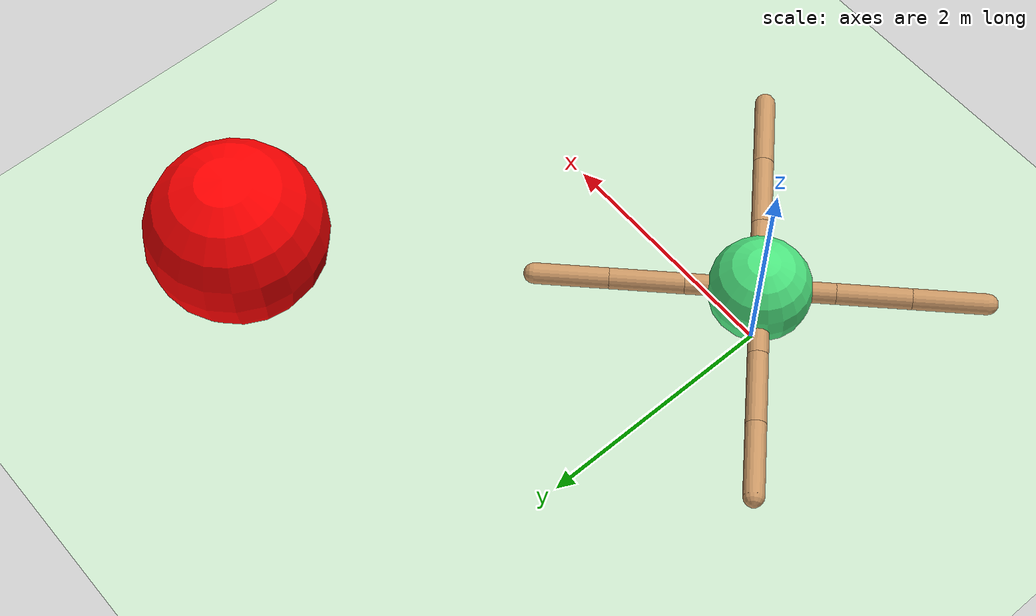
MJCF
<mujoco model="ant">
  <compiler inertiafromgeom="true" angle="degree" coordinate="local" />
  <size njmax="1000" nconmax="1500"></size>
  <option timestep="0.005" integrator="RK4" />
  <custom>
    <numeric name="init_qpos" data="0.0 0.0 0.55 1.0 0.0 0.0 0.0 0.0 1.0 0.0 -1.0 0.0 -1.0 0.0 1.0" />
  </custom>
  <default>
    <joint limited="true" armature="1" damping="1" />
    <geom condim="3" conaffinity="0" margin="0.01" friction="1 0.5 0.5" solref=".02 1" solimp=".8 .8 .01" rgba="0.8 0.6 0.4 1" density="5.0" />
  </default>
  <asset>
    <texture type="skybox" builtin="gradient" width="100" height="100" rgb1="1 1 1" rgb2="0 0 0" />
    <texture name="texgeom" type="cube" builtin="flat" mark="cross" width="127" height="1278" rgb1="0.8 0.6 0.4" rgb2="0.8 0.6 0.4" markrgb="1 1 1" random="0.01" />
    <texture name="texplane" type="2d" builtin="checker" rgb1="0.2 0.3 0.4" rgb2="0.1 0.2 0.3" width="100" height="100" />
    <material name='MatPlane' texture="texplane" shininess="1" texrepeat="60 60" specular="1"  reflectance="0.0" />
    <material name='geom' texture="texgeom" texuniform="true" />
  </asset>
  <worldbody>
    <light directional="true" cutoff="100" exponent="1" diffuse="1 1 1" specular=".1 .1 .1" pos="0 0 1.3" dir="-0 0 -1.3" />
    <geom name='floor' pos='0 0 0' size='40 40 40' type='plane' conaffinity='1' rgba='0.8 0.9 0.8 1' condim='3' material='MatPlane' />
    <body name="torso" pos="0 0 0.75">
      <geom name="torso_geom" type="sphere" size="0.4" pos="0 0 0" rgba="0.3 0.9 0.5 1"/>
      <joint name="root" type="free" limited="false" pos="0 0 0" axis="0 0 1" margin="0.01" armature="0" damping="0" />
      <body name="front_left_leg" pos="0 0 0">
        <geom name="aux_1_geom" type="capsule" size="0.08" fromto="0.0 0.0 0.0 0.4 0.4 0.0" />
        <body name="aux_1" pos="0.4 0.4 0">
          <joint name="hip_1" type="hinge" pos="0.0 0.0 0.0" axis="0 0 1" range="-30 30" />
          <geom name="left_leg_geom" type="capsule" size="0.08" fromto="0.0 0.0 0.0 0.4 0.4 0.0" />
          <body pos="0.4 0.4 0">
            <joint name="ankle_1" type="hinge" pos="0.0 0.0 0.0" axis="-1 1 0" range="30 70" />
            <geom name="left_ankle_geom" type="capsule" size="0.08" fromto="0.0 0.0 0.0 0.4 0.4 0.0" />
          </body>
        </body>
      </body>
      <body name="front_right_leg" pos="0 0 0">
        <geom name="aux_2_geom" type="capsule" size="0.08" fromto="0.0 0.0 0.0 -0.4 0.4 0.0" />
        <body name="aux_2" pos="-0.4 0.4 0">
          <joint name="hip_2" type="hinge" pos="0.0 0.0 0.0" axis="0 0 1" range="-30 30" />
          <geom name="right_leg_geom" type="capsule" size="0.08" fromto="0.0 0.0 0.0 -0.4 0.4 0.0" />
          <body pos="-0.4 0.4 0">
            <joint name="ankle_2" type="hinge" pos="0.0 0.0 0.0" axis="1 1 0" range="-70 -30" />
            <geom name="right_ankle_geom" type="capsule" size="0.08" fromto="0.0 0.0 0.0 -0.4 0.4 0.0" />
          </body>
        </body>
      </body>
      <body name="back_leg" pos="0 0 0">
        <geom name="aux_3_geom" type="capsule" size="0.08" fromto="0.0 0.0 0.0 -0.4 -0.4 0.0" />
        <body name="aux_3" pos="-0.4 -0.4 0">
          <joint name="hip_3" type="hinge" pos="0.0 0.0 0.0" axis="0 0 1" range="-30 30" />
          <geom name="back_leg_geom" type="capsule" size="0.08" fromto="0.0 0.0 0.0 -0.4 -0.4 0.0" />
          <body pos="-0.4 -0.4 0">
            <joint name="ankle_3" type="hinge" pos="0.0 0.0 0.0" axis="-1 1 0" range="-70 -30" />
            <geom name="third_ankle_geom" type="capsule" size="0.08" fromto="0.0 0.0 0.0 -0.4 -0.4 0.0" />
          </body>
        </body>
      </body>
      <body name="right_back_leg" pos="0 0 0">
        <geom name="aux_4_geom" type="capsule" size="0.08" fromto="0.0 0.0 0.0 0.4 -0.4 0.0" />
        <body name="aux_4" pos="0.4 -0.4 0">
          <joint name="hip_4" type="hinge" pos="0.0 0.0 0.0" axis="0 0 1" range="-30 30" />
          <geom name="rightback_leg_geom" type="capsule" size="0.08" fromto="0.0 0.0 0.0 0.4 -0.4 0.0" />
          <body pos="0.4 -0.4 0">
            <joint name="ankle_4" type="hinge" pos="0.0 0.0 0.0" axis="1 1 0" range="30 70" />
            <geom name="fourth_ankle_geom" type="capsule" size="0.08" fromto="0.0 0.0 0.0 0.4 -0.4 0.0" />
          </body>
        </body>
      </body>
    </body>
    <body name="skybox" pos="0.8 0.75 0">
      <site name="target0" pos="2 2 1" size="0.7" rgba="1 0 0 1" type="sphere"></site>
      <site name = "subgoal_0" type="sphere" pos="0 0 0.5" size="0.7" rgba="1 0 1 0" /><!-- Subgoal 1: Purple -->
      <site name = "subgoal_1" type="sphere" pos="0 0 0.5" size="0.7" rgba="0 1 0 0" /><!-- Subgoal 2: Green -->
      <site name = "subgoal_2" type="sphere" pos="0 0 0.5" size="0.7" rgba="0.5 0.5 0.5 0" /><!-- Subgoal 3: Gray -->
      <site name = "subgoal_3" type="sphere" pos="0 0 0.5" size="0.7" rgba="1 1 1 0" /><!-- Subgoal 4: White -->
      <site name = "subgoal_4" type="sphere" pos="0 0 0.5" size="0.7" rgba="0 0 0 0" /><!-- Subgoal 5: Black -->
    </body>
  </worldbody>
  <actuator>
    <motor joint="hip_1" ctrlrange="-1.0 1.0" gear="100.0" ctrllimited="true" />
    <motor joint="hip_2" ctrlrange="-1.0 1.0" gear="100.0" ctrllimited="true" />
    <motor joint="hip_3" ctrlrange="-1.0 1.0" gear="100.0" ctrllimited="true" />
    <motor joint="hip_4" ctrlrange="-1.0 1.0" gear="100.0" ctrllimited="true" />
    <motor joint="ankle_4" ctrlrange="-1.0 1.0" gear="100.0" ctrllimited="true" />
    <motor joint="ankle_1" ctrlrange="-1.0 1.0" gear="100.0" ctrllimited="true" />
    <motor joint="ankle_2" ctrlrange="-1.0 1.0" gear="100.0" ctrllimited="true" />
    <motor joint="ankle_3" ctrlrange="-1.0 1.0" gear="100.0" ctrllimited="true" />
  </actuator>
</mujoco>
